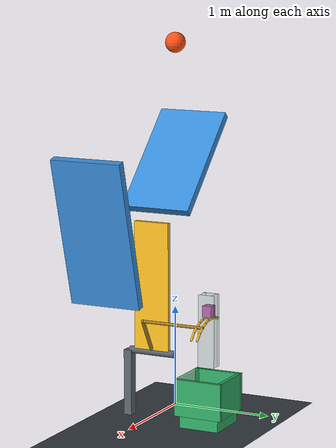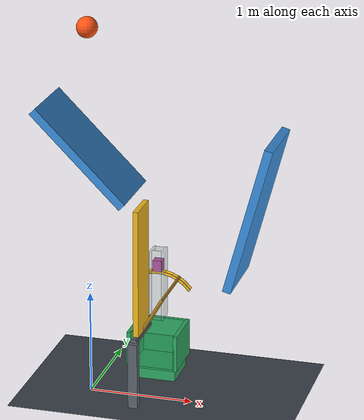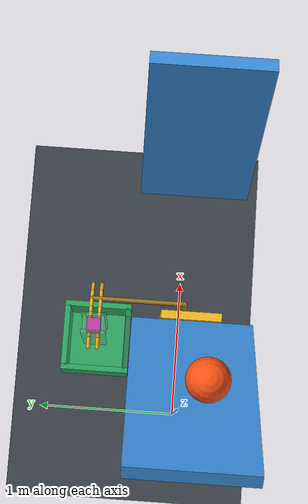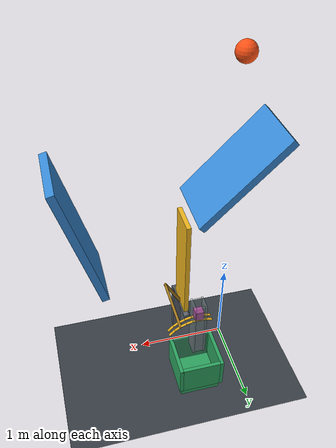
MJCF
<mujoco model="ricochet_cam_release">
  <compiler angle="degree" autolimits="true"/>
  <option timestep="0.002" gravity="0 0 -9.81" integrator="implicitfast" iterations="100" tolerance="1e-10"/>
  <size njmax="1000" nconmax="200"/>

  <visual>
    <headlight ambient="0.45 0.45 0.45" diffuse="0.75 0.75 0.75" specular="0.2 0.2 0.2"/>
  </visual>

  <worldbody>
    <light name="overhead" pos="0 -3 6" dir="0 0.4 -1"/>
    <camera name="overview" pos="4 -7 4.5" xyaxes="0.88 0.47 0 -0.20 0.38 0.90"/>

    <geom name="floor" type="plane" size="10 10 0.1" rgba="0.22 0.25 0.28 1" contype="8" conaffinity="5" condim="6" friction="1.0 0.02 0.04" solref="0.008 1" solimp="0.95 0.99 0.001"/>

    <!-- At x=0, wall1's upper surface is z=2.506568.
         The ball's initial bottom is exactly one metre above it. -->
    <body name="ball" pos="0 0 3.606568">
      <freejoint name="ball_free"/>
      <geom name="ball_geom" type="sphere" size="0.1" mass="0.8" rgba="1 0.32 0.08 1" contype="1" conaffinity="1" condim="6" friction="0.9 0.02 0.04" solref="0.008 1" solimp="0.95 0.99 0.001"/>
    </body>

    <body name="wall1" pos="0 0 2.45">
      <geom name="wall1_face" type="box" size="0.60 0.35 0.04" euler="0 45 0" rgba="0.22 0.55 0.85 1" contype="1" conaffinity="1" friction="0.001 0 0"/>
    </body>

    <body name="wall2" pos="1.6 0 2.0">
      <geom name="wall2_face" type="box" size="0.72 0.35 0.04" euler="0 -75 0" rgba="0.22 0.55 0.85 1" contype="1" conaffinity="1" friction="0.001 0 0"/>
    </body>

    <body name="target_mount" pos="0.5 0 0.65">
      <geom name="target_mount_axle" type="cylinder" fromto="0 -0.24 0 0 0.24 0" size="0.035" rgba="0.35 0.38 0.42 1" contype="0" conaffinity="0"/>
      <geom name="target_mount_post" type="box" pos="0 -0.25 -0.325" size="0.045 0.04 0.325" rgba="0.35 0.38 0.42 1" contype="0" conaffinity="0"/>
    </body>

    <body name="target" pos="0.5 0 0.65">
      <inertial pos="0 0 0.3" mass="1.2" diaginertia="0.09 0.13 0.07"/>
      <joint name="target_hinge" type="hinge" axis="0 1 0" range="-60 0" damping="0.025" frictionloss="0.15" solreflimit="0.008 1" solimplimit="0.99 0.99 0.001"/>

      <geom name="target_paddle" type="box" pos="0 0 0.64" size="0.025 0.18 0.64" rgba="0.95 0.72 0.12 1" contype="2" conaffinity="5" priority="1" condim="3" friction="0.25 0.005 0.005" solref="0.008 1" solimp="0.95 0.99 0.001"/>
      <geom name="target_cam_arm" type="capsule" fromto="0 0 0 0.2 0 0.346410" size="0.018" rgba="0.65 0.48 0.12 1" contype="2" conaffinity="5" priority="1" friction="0.01 0 0" solref="0.008 1"/>
      <geom name="target_cam_crossbar" type="capsule" fromto="0.2 0 0.346410 0.2 0.63 0.346410" size="0.015" rgba="0.65 0.48 0.12 1" contype="2" conaffinity="5" priority="1" friction="0.01 0 0" solref="0.008 1"/>

      <geom name="target_cam_left_01" type="capsule" fromto="0.313043 0.57 0.249006 0.257115 0.57 0.306418" size="0.012" rgba="0.95 0.72 0.12 1" contype="2" conaffinity="5" priority="1" friction="0.01 0 0" solref="0.008 1"/>
      <geom name="target_cam_left_02" type="capsule" fromto="0.257115 0.57 0.306418 0.2 0.57 0.346410" size="0.012" rgba="0.95 0.72 0.12 1" contype="2" conaffinity="5" priority="1" friction="0.01 0 0" solref="0.008 1"/>
      <geom name="target_cam_left_03" type="capsule" fromto="0.2 0.57 0.346410 0.136808 0.57 0.375877" size="0.012" rgba="0.95 0.72 0.12 1" contype="2" conaffinity="5" priority="1" friction="0.01 0 0" solref="0.008 1"/>
      <geom name="target_cam_left_04" type="capsule" fromto="0.136808 0.57 0.375877 0.069459 0.57 0.393923" size="0.012" rgba="0.95 0.72 0.12 1" contype="2" conaffinity="5" priority="1" friction="0.01 0 0" solref="0.008 1"/>
      <geom name="target_cam_left_05" type="capsule" fromto="0.069459 0.57 0.393923 0 0.57 0.4" size="0.012" rgba="0.95 0.72 0.12 1" contype="2" conaffinity="5" priority="1" friction="0.01 0 0" solref="0.008 1"/>
      <geom name="target_cam_left_06" type="capsule" fromto="0 0.57 0.4 -0.069459 0.57 0.393923" size="0.012" rgba="0.95 0.72 0.12 1" contype="2" conaffinity="5" priority="1" friction="0.01 0 0" solref="0.008 1"/>
      <geom name="target_cam_left_07" type="capsule" fromto="-0.069459 0.57 0.393923 -0.136808 0.57 0.375877" size="0.012" rgba="0.95 0.72 0.12 1" contype="2" conaffinity="5" priority="1" friction="0.01 0 0" solref="0.008 1"/>

      <geom name="target_cam_right_01" type="capsule" fromto="0.313043 0.63 0.249006 0.257115 0.63 0.306418" size="0.012" rgba="0.95 0.72 0.12 1" contype="2" conaffinity="5" priority="1" friction="0.01 0 0" solref="0.008 1"/>
      <geom name="target_cam_right_02" type="capsule" fromto="0.257115 0.63 0.306418 0.2 0.63 0.346410" size="0.012" rgba="0.95 0.72 0.12 1" contype="2" conaffinity="5" priority="1" friction="0.01 0 0" solref="0.008 1"/>
      <geom name="target_cam_right_03" type="capsule" fromto="0.2 0.63 0.346410 0.136808 0.63 0.375877" size="0.012" rgba="0.95 0.72 0.12 1" contype="2" conaffinity="5" priority="1" friction="0.01 0 0" solref="0.008 1"/>
      <geom name="target_cam_right_04" type="capsule" fromto="0.136808 0.63 0.375877 0.069459 0.63 0.393923" size="0.012" rgba="0.95 0.72 0.12 1" contype="2" conaffinity="5" priority="1" friction="0.01 0 0" solref="0.008 1"/>
      <geom name="target_cam_right_05" type="capsule" fromto="0.069459 0.63 0.393923 0 0.63 0.4" size="0.012" rgba="0.95 0.72 0.12 1" contype="2" conaffinity="5" priority="1" friction="0.01 0 0" solref="0.008 1"/>
      <geom name="target_cam_right_06" type="capsule" fromto="0 0.63 0.4 -0.069459 0.63 0.393923" size="0.012" rgba="0.95 0.72 0.12 1" contype="2" conaffinity="5" priority="1" friction="0.01 0 0" solref="0.008 1"/>
      <geom name="target_cam_right_07" type="capsule" fromto="-0.069459 0.63 0.393923 -0.136808 0.63 0.375877" size="0.012" rgba="0.95 0.72 0.12 1" contype="2" conaffinity="5" priority="1" friction="0.01 0 0" solref="0.008 1"/>
    </body>

    <body name="block" pos="0.5 0.6 1.118">
      <freejoint name="block_free"/>
      <geom name="block_geom" type="box" size="0.045 0.045 0.055" mass="0.15" rgba="0.75 0.25 0.65 1" contype="4" conaffinity="10" condim="3" friction="0.6 0.005 0.005" solref="0.008 1" solimp="0.95 0.99 0.001"/>
    </body>

    <!-- Collision masks let the cam sweep through the fixed guide structure.
         Only the payload contacts these frictionless vertical guides. -->
    <body name="bin" pos="0 0 0">
      <geom name="bin_bottom" type="box" pos="0.5 0.6 0.06" size="0.22 0.20 0.06" rgba="0.18 0.65 0.38 1" contype="8" conaffinity="4" friction="0.8 0.01 0.01" solref="0.008 1"/>
      <geom name="bin_left" type="box" pos="0.27 0.6 0.3" size="0.02 0.24 0.18" rgba="0.18 0.65 0.38 1" contype="8" conaffinity="4" friction="0.5 0.005 0.005" solref="0.008 1"/>
      <geom name="bin_right" type="box" pos="0.73 0.6 0.3" size="0.02 0.24 0.18" rgba="0.18 0.65 0.38 1" contype="8" conaffinity="4" friction="0.5 0.005 0.005" solref="0.008 1"/>
      <geom name="bin_front" type="box" pos="0.5 0.38 0.3" size="0.22 0.02 0.18" rgba="0.18 0.65 0.38 0.65" contype="8" conaffinity="4" friction="0.5 0.005 0.005" solref="0.008 1"/>
      <geom name="bin_back" type="box" pos="0.5 0.82 0.3" size="0.22 0.02 0.18" rgba="0.18 0.65 0.38 1" contype="8" conaffinity="4" friction="0.5 0.005 0.005" solref="0.008 1"/>

      <geom name="bin_guide_left" type="box" pos="0.442 0.6 0.925" size="0.01 0.08 0.355" rgba="0.55 0.65 0.62 0.35" contype="8" conaffinity="4" priority="2" condim="1" friction="0 0 0" solref="0.006 1" solimp="0.95 0.99 0.001"/>
      <geom name="bin_guide_right" type="box" pos="0.558 0.6 0.925" size="0.01 0.08 0.355" rgba="0.55 0.65 0.62 0.35" contype="8" conaffinity="4" priority="2" condim="1" friction="0 0 0" solref="0.006 1" solimp="0.95 0.99 0.001"/>
      <geom name="bin_guide_front" type="box" pos="0.5 0.54 0.925" size="0.048 0.01 0.355" rgba="0.55 0.65 0.62 0.25" contype="8" conaffinity="4" priority="2" condim="1" friction="0 0 0" solref="0.006 1" solimp="0.95 0.99 0.001"/>
      <geom name="bin_guide_back" type="box" pos="0.5 0.66 0.925" size="0.048 0.01 0.355" rgba="0.55 0.65 0.62 0.35" contype="8" conaffinity="4" priority="2" condim="1" friction="0 0 0" solref="0.006 1" solimp="0.95 0.99 0.001"/>
    </body>
  </worldbody>

  <contact>
    <pair name="ball_wall1_bounce" geom1="ball_geom" geom2="wall1_face" condim="3" friction="0.001 0.001 0 0 0" solref="-100000 -30" solimp="0.99 0.99 0.001"/>
    <pair name="ball_wall2_bounce" geom1="ball_geom" geom2="wall2_face" condim="3" friction="0.001 0.001 0 0 0" solref="-100000 -30" solimp="0.99 0.99 0.001"/>
  </contact>

  <keyframe>
    <key name="start" qpos="0 0 3.606568 1 0 0 0 0 0.5 0.6 1.118 1 0 0 0"/>
  </keyframe>
</mujoco>
